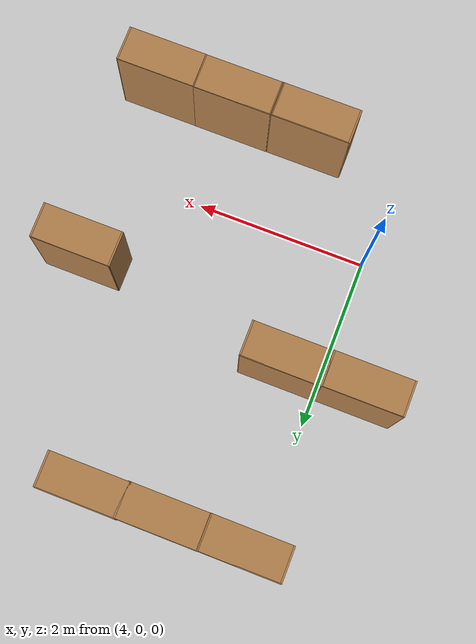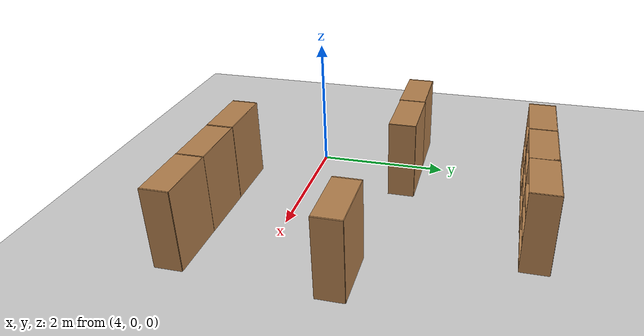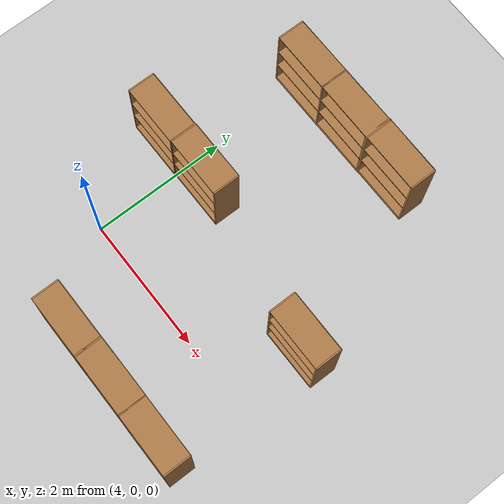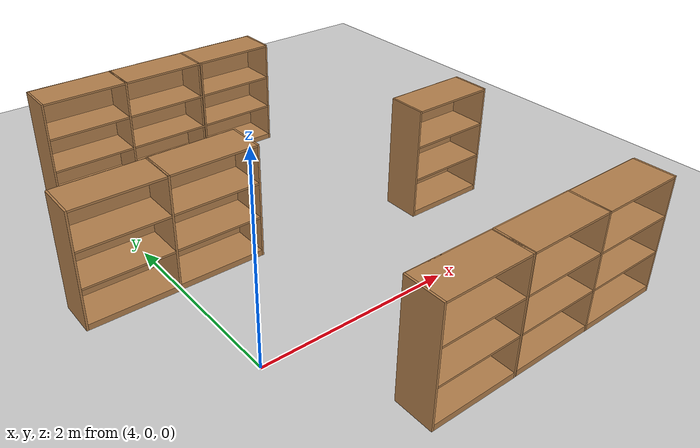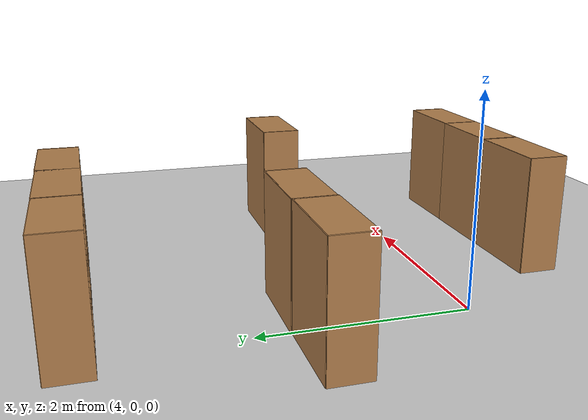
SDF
<sdf version="1.7">
 <world name="default">
  <model name="ground_plane">
   <static>1</static>
   <link name="link">
    <collision name="collision">
     <geometry><plane><normal>0 0 1</normal><size>100 100</size></plane></geometry>
     <surface><friction><ode><mu>100</mu><mu2>50</mu2></ode></friction></surface>
    </collision>
    <visual name="visual">
     <cast_shadows>0</cast_shadows>
     <geometry><plane><normal>0 0 1</normal><size>100 100</size></plane></geometry>
     <material>
      <script><uri>file://media/materials/scripts/gazebo.material</uri><name>Gazebo/Grey</name></script>
     </material>
    </visual>
   </link>
  </model>
  <model name="bookshelf_6">
   <static>1</static>
   <link name="link">
    <inertial><mass>1</mass></inertial>
    <collision name="back">
     <pose>0 0.005 0.6 0 -0 0</pose>
     <geometry><box><size>0.9 0.01 1.2</size></box></geometry>
    </collision>
    <visual name="visual1">
     <pose>0 0.005 0.6 0 -0 0</pose>
     <geometry><box><size>0.9 0.01 1.2</size></box></geometry>
     <material>
      <script><uri>file://media/materials/scripts/gazebo.material</uri><name>Gazebo/Wood</name></script>
     </material>
    </visual>
    <collision name="left_side">
     <pose>0.45 -0.195 0.6 0 -0 0</pose>
     <geometry><box><size>0.02 0.4 1.2</size></box></geometry>
    </collision>
    <visual name="visual2">
     <pose>0.45 -0.195 0.6 0 -0 0</pose>
     <geometry><box><size>0.02 0.4 1.2</size></box></geometry>
     <material>
      <script><uri>file://media/materials/scripts/gazebo.material</uri><name>Gazebo/Wood</name></script>
     </material>
    </visual>
    <collision name="right_side">
     <pose>-0.45 -0.195 0.6 0 -0 0</pose>
     <geometry><box><size>0.02 0.4 1.2</size></box></geometry>
    </collision>
    <visual name="visual3">
     <pose>-0.45 -0.195 0.6 0 -0 0</pose>
     <geometry><box><size>0.02 0.4 1.2</size></box></geometry>
     <material>
      <script><uri>file://media/materials/scripts/gazebo.material</uri><name>Gazebo/Wood</name></script>
     </material>
    </visual>
    <collision name="bottom">
     <pose>0 -0.195 0.03 0 -0 0</pose>
     <geometry><box><size>0.88 0.4 0.06</size></box></geometry>
    </collision>
    <visual name="visual4">
     <pose>0 -0.195 0.03 0 -0 0</pose>
     <geometry><box><size>0.88 0.4 0.06</size></box></geometry>
     <material>
      <script><uri>file://media/materials/scripts/gazebo.material</uri><name>Gazebo/Wood</name></script>
     </material>
    </visual>
    <collision name="top">
     <pose>0 -0.195 1.19 0 -0 0</pose>
     <geometry><box><size>0.88 0.4 0.02</size></box></geometry>
    </collision>
    <visual name="visual5">
     <pose>0 -0.195 1.19 0 -0 0</pose>
     <geometry><box><size>0.88 0.4 0.02</size></box></geometry>
     <material>
      <script><uri>file://media/materials/scripts/gazebo.material</uri><name>Gazebo/Wood</name></script>
     </material>
    </visual>
    <collision name="low_shelf">
     <pose>0 -0.195 0.43 0 -0 0</pose>
     <geometry><box><size>0.88 0.4 0.02</size></box></geometry>
    </collision>
    <visual name="visual6">
     <pose>0 -0.195 0.43 0 -0 0</pose>
     <geometry><box><size>0.88 0.4 0.02</size></box></geometry>
     <material>
      <script><uri>file://media/materials/scripts/gazebo.material</uri><name>Gazebo/Wood</name></script>
     </material>
    </visual>
    <collision name="high_shelf">
     <pose>0 -0.195 0.8 0 -0 0</pose>
     <geometry><box><size>0.88 0.4 0.02</size></box></geometry>
    </collision>
    <visual name="visual7">
     <pose>0 -0.195 0.8 0 -0 0</pose>
     <geometry><box><size>0.88 0.4 0.02</size></box></geometry>
     <material>
      <script><uri>file://media/materials/scripts/gazebo.material</uri><name>Gazebo/Wood</name></script>
     </material>
    </visual>
   </link>
   <pose>3.54005 1.66298 0 0 -0 0</pose>
  </model>
  <model name="bookshelf_7">
   <static>1</static>
   <link name="link">
    <inertial><mass>1</mass></inertial>
    <collision name="back">
     <pose>0 0.005 0.6 0 -0 0</pose>
     <geometry><box><size>0.9 0.01 1.2</size></box></geometry>
    </collision>
    <visual name="visual1">
     <pose>0 0.005 0.6 0 -0 0</pose>
     <geometry><box><size>0.9 0.01 1.2</size></box></geometry>
     <material>
      <script><uri>file://media/materials/scripts/gazebo.material</uri><name>Gazebo/Wood</name></script>
     </material>
    </visual>
    <collision name="left_side">
     <pose>0.45 -0.195 0.6 0 -0 0</pose>
     <geometry><box><size>0.02 0.4 1.2</size></box></geometry>
    </collision>
    <visual name="visual2">
     <pose>0.45 -0.195 0.6 0 -0 0</pose>
     <geometry><box><size>0.02 0.4 1.2</size></box></geometry>
     <material>
      <script><uri>file://media/materials/scripts/gazebo.material</uri><name>Gazebo/Wood</name></script>
     </material>
    </visual>
    <collision name="right_side">
     <pose>-0.45 -0.195 0.6 0 -0 0</pose>
     <geometry><box><size>0.02 0.4 1.2</size></box></geometry>
    </collision>
    <visual name="visual3">
     <pose>-0.45 -0.195 0.6 0 -0 0</pose>
     <geometry><box><size>0.02 0.4 1.2</size></box></geometry>
     <material>
      <script><uri>file://media/materials/scripts/gazebo.material</uri><name>Gazebo/Wood</name></script>
     </material>
    </visual>
    <collision name="bottom">
     <pose>0 -0.195 0.03 0 -0 0</pose>
     <geometry><box><size>0.88 0.4 0.06</size></box></geometry>
    </collision>
    <visual name="visual4">
     <pose>0 -0.195 0.03 0 -0 0</pose>
     <geometry><box><size>0.88 0.4 0.06</size></box></geometry>
     <material>
      <script><uri>file://media/materials/scripts/gazebo.material</uri><name>Gazebo/Wood</name></script>
     </material>
    </visual>
    <collision name="top">
     <pose>0 -0.195 1.19 0 -0 0</pose>
     <geometry><box><size>0.88 0.4 0.02</size></box></geometry>
    </collision>
    <visual name="visual5">
     <pose>0 -0.195 1.19 0 -0 0</pose>
     <geometry><box><size>0.88 0.4 0.02</size></box></geometry>
     <material>
      <script><uri>file://media/materials/scripts/gazebo.material</uri><name>Gazebo/Wood</name></script>
     </material>
    </visual>
    <collision name="low_shelf">
     <pose>0 -0.195 0.43 0 -0 0</pose>
     <geometry><box><size>0.88 0.4 0.02</size></box></geometry>
    </collision>
    <visual name="visual6">
     <pose>0 -0.195 0.43 0 -0 0</pose>
     <geometry><box><size>0.88 0.4 0.02</size></box></geometry>
     <material>
      <script><uri>file://media/materials/scripts/gazebo.material</uri><name>Gazebo/Wood</name></script>
     </material>
    </visual>
    <collision name="high_shelf">
     <pose>0 -0.195 0.8 0 -0 0</pose>
     <geometry><box><size>0.88 0.4 0.02</size></box></geometry>
    </collision>
    <visual name="visual7">
     <pose>0 -0.195 0.8 0 -0 0</pose>
     <geometry><box><size>0.88 0.4 0.02</size></box></geometry>
     <material>
      <script><uri>file://media/materials/scripts/gazebo.material</uri><name>Gazebo/Wood</name></script>
     </material>
    </visual>
   </link>
   <pose>4.4431 1.67143 0 0 -0 0</pose>
  </model>
  <model name="bookshelf_8">
   <static>1</static>
   <link name="link">
    <inertial><mass>1</mass></inertial>
    <collision name="back">
     <pose>0 0.005 0.6 0 -0 0</pose>
     <geometry><box><size>0.9 0.01 1.2</size></box></geometry>
    </collision>
    <visual name="visual1">
     <pose>0 0.005 0.6 0 -0 0</pose>
     <geometry><box><size>0.9 0.01 1.2</size></box></geometry>
     <material>
      <script><uri>file://media/materials/scripts/gazebo.material</uri><name>Gazebo/Wood</name></script>
     </material>
    </visual>
    <collision name="left_side">
     <pose>0.45 -0.195 0.6 0 -0 0</pose>
     <geometry><box><size>0.02 0.4 1.2</size></box></geometry>
    </collision>
    <visual name="visual2">
     <pose>0.45 -0.195 0.6 0 -0 0</pose>
     <geometry><box><size>0.02 0.4 1.2</size></box></geometry>
     <material>
      <script><uri>file://media/materials/scripts/gazebo.material</uri><name>Gazebo/Wood</name></script>
     </material>
    </visual>
    <collision name="right_side">
     <pose>-0.45 -0.195 0.6 0 -0 0</pose>
     <geometry><box><size>0.02 0.4 1.2</size></box></geometry>
    </collision>
    <visual name="visual3">
     <pose>-0.45 -0.195 0.6 0 -0 0</pose>
     <geometry><box><size>0.02 0.4 1.2</size></box></geometry>
     <material>
      <script><uri>file://media/materials/scripts/gazebo.material</uri><name>Gazebo/Wood</name></script>
     </material>
    </visual>
    <collision name="bottom">
     <pose>0 -0.195 0.03 0 -0 0</pose>
     <geometry><box><size>0.88 0.4 0.06</size></box></geometry>
    </collision>
    <visual name="visual4">
     <pose>0 -0.195 0.03 0 -0 0</pose>
     <geometry><box><size>0.88 0.4 0.06</size></box></geometry>
     <material>
      <script><uri>file://media/materials/scripts/gazebo.material</uri><name>Gazebo/Wood</name></script>
     </material>
    </visual>
    <collision name="top">
     <pose>0 -0.195 1.19 0 -0 0</pose>
     <geometry><box><size>0.88 0.4 0.02</size></box></geometry>
    </collision>
    <visual name="visual5">
     <pose>0 -0.195 1.19 0 -0 0</pose>
     <geometry><box><size>0.88 0.4 0.02</size></box></geometry>
     <material>
      <script><uri>file://media/materials/scripts/gazebo.material</uri><name>Gazebo/Wood</name></script>
     </material>
    </visual>
    <collision name="low_shelf">
     <pose>0 -0.195 0.43 0 -0 0</pose>
     <geometry><box><size>0.88 0.4 0.02</size></box></geometry>
    </collision>
    <visual name="visual6">
     <pose>0 -0.195 0.43 0 -0 0</pose>
     <geometry><box><size>0.88 0.4 0.02</size></box></geometry>
     <material>
      <script><uri>file://media/materials/scripts/gazebo.material</uri><name>Gazebo/Wood</name></script>
     </material>
    </visual>
    <collision name="high_shelf">
     <pose>0 -0.195 0.8 0 -0 0</pose>
     <geometry><box><size>0.88 0.4 0.02</size></box></geometry>
    </collision>
    <visual name="visual7">
     <pose>0 -0.195 0.8 0 -0 0</pose>
     <geometry><box><size>0.88 0.4 0.02</size></box></geometry>
     <material>
      <script><uri>file://media/materials/scripts/gazebo.material</uri><name>Gazebo/Wood</name></script>
     </material>
    </visual>
   </link>
   <pose>4.13384 3.67848 0 0 -0 0</pose>
  </model>
  <model name="bookshelf_9">
   <static>1</static>
   <link name="link">
    <inertial><mass>1</mass></inertial>
    <collision name="back">
     <pose>0 0.005 0.6 0 -0 0</pose>
     <geometry><box><size>0.9 0.01 1.2</size></box></geometry>
    </collision>
    <visual name="visual1">
     <pose>0 0.005 0.6 0 -0 0</pose>
     <geometry><box><size>0.9 0.01 1.2</size></box></geometry>
     <material>
      <script><uri>file://media/materials/scripts/gazebo.material</uri><name>Gazebo/Wood</name></script>
     </material>
    </visual>
    <collision name="left_side">
     <pose>0.45 -0.195 0.6 0 -0 0</pose>
     <geometry><box><size>0.02 0.4 1.2</size></box></geometry>
    </collision>
    <visual name="visual2">
     <pose>0.45 -0.195 0.6 0 -0 0</pose>
     <geometry><box><size>0.02 0.4 1.2</size></box></geometry>
     <material>
      <script><uri>file://media/materials/scripts/gazebo.material</uri><name>Gazebo/Wood</name></script>
     </material>
    </visual>
    <collision name="right_side">
     <pose>-0.45 -0.195 0.6 0 -0 0</pose>
     <geometry><box><size>0.02 0.4 1.2</size></box></geometry>
    </collision>
    <visual name="visual3">
     <pose>-0.45 -0.195 0.6 0 -0 0</pose>
     <geometry><box><size>0.02 0.4 1.2</size></box></geometry>
     <material>
      <script><uri>file://media/materials/scripts/gazebo.material</uri><name>Gazebo/Wood</name></script>
     </material>
    </visual>
    <collision name="bottom">
     <pose>0 -0.195 0.03 0 -0 0</pose>
     <geometry><box><size>0.88 0.4 0.06</size></box></geometry>
    </collision>
    <visual name="visual4">
     <pose>0 -0.195 0.03 0 -0 0</pose>
     <geometry><box><size>0.88 0.4 0.06</size></box></geometry>
     <material>
      <script><uri>file://media/materials/scripts/gazebo.material</uri><name>Gazebo/Wood</name></script>
     </material>
    </visual>
    <collision name="top">
     <pose>0 -0.195 1.19 0 -0 0</pose>
     <geometry><box><size>0.88 0.4 0.02</size></box></geometry>
    </collision>
    <visual name="visual5">
     <pose>0 -0.195 1.19 0 -0 0</pose>
     <geometry><box><size>0.88 0.4 0.02</size></box></geometry>
     <material>
      <script><uri>file://media/materials/scripts/gazebo.material</uri><name>Gazebo/Wood</name></script>
     </material>
    </visual>
    <collision name="low_shelf">
     <pose>0 -0.195 0.43 0 -0 0</pose>
     <geometry><box><size>0.88 0.4 0.02</size></box></geometry>
    </collision>
    <visual name="visual6">
     <pose>0 -0.195 0.43 0 -0 0</pose>
     <geometry><box><size>0.88 0.4 0.02</size></box></geometry>
     <material>
      <script><uri>file://media/materials/scripts/gazebo.material</uri><name>Gazebo/Wood</name></script>
     </material>
    </visual>
    <collision name="high_shelf">
     <pose>0 -0.195 0.8 0 -0 0</pose>
     <geometry><box><size>0.88 0.4 0.02</size></box></geometry>
    </collision>
    <visual name="visual7">
     <pose>0 -0.195 0.8 0 -0 0</pose>
     <geometry><box><size>0.88 0.4 0.02</size></box></geometry>
     <material>
      <script><uri>file://media/materials/scripts/gazebo.material</uri><name>Gazebo/Wood</name></script>
     </material>
    </visual>
   </link>
   <pose>5.03495 3.6809 0 0 -0 0</pose>
  </model>
  <model name="bookshelf_10">
   <static>1</static>
   <link name="link">
    <inertial><mass>1</mass></inertial>
    <collision name="back">
     <pose>0 0.005 0.6 0 -0 0</pose>
     <geometry><box><size>0.9 0.01 1.2</size></box></geometry>
    </collision>
    <visual name="visual1">
     <pose>0 0.005 0.6 0 -0 0</pose>
     <geometry><box><size>0.9 0.01 1.2</size></box></geometry>
     <material>
      <script><uri>file://media/materials/scripts/gazebo.material</uri><name>Gazebo/Wood</name></script>
     </material>
    </visual>
    <collision name="left_side">
     <pose>0.45 -0.195 0.6 0 -0 0</pose>
     <geometry><box><size>0.02 0.4 1.2</size></box></geometry>
    </collision>
    <visual name="visual2">
     <pose>0.45 -0.195 0.6 0 -0 0</pose>
     <geometry><box><size>0.02 0.4 1.2</size></box></geometry>
     <material>
      <script><uri>file://media/materials/scripts/gazebo.material</uri><name>Gazebo/Wood</name></script>
     </material>
    </visual>
    <collision name="right_side">
     <pose>-0.45 -0.195 0.6 0 -0 0</pose>
     <geometry><box><size>0.02 0.4 1.2</size></box></geometry>
    </collision>
    <visual name="visual3">
     <pose>-0.45 -0.195 0.6 0 -0 0</pose>
     <geometry><box><size>0.02 0.4 1.2</size></box></geometry>
     <material>
      <script><uri>file://media/materials/scripts/gazebo.material</uri><name>Gazebo/Wood</name></script>
     </material>
    </visual>
    <collision name="bottom">
     <pose>0 -0.195 0.03 0 -0 0</pose>
     <geometry><box><size>0.88 0.4 0.06</size></box></geometry>
    </collision>
    <visual name="visual4">
     <pose>0 -0.195 0.03 0 -0 0</pose>
     <geometry><box><size>0.88 0.4 0.06</size></box></geometry>
     <material>
      <script><uri>file://media/materials/scripts/gazebo.material</uri><name>Gazebo/Wood</name></script>
     </material>
    </visual>
    <collision name="top">
     <pose>0 -0.195 1.19 0 -0 0</pose>
     <geometry><box><size>0.88 0.4 0.02</size></box></geometry>
    </collision>
    <visual name="visual5">
     <pose>0 -0.195 1.19 0 -0 0</pose>
     <geometry><box><size>0.88 0.4 0.02</size></box></geometry>
     <material>
      <script><uri>file://media/materials/scripts/gazebo.material</uri><name>Gazebo/Wood</name></script>
     </material>
    </visual>
    <collision name="low_shelf">
     <pose>0 -0.195 0.43 0 -0 0</pose>
     <geometry><box><size>0.88 0.4 0.02</size></box></geometry>
    </collision>
    <visual name="visual6">
     <pose>0 -0.195 0.43 0 -0 0</pose>
     <geometry><box><size>0.88 0.4 0.02</size></box></geometry>
     <material>
      <script><uri>file://media/materials/scripts/gazebo.material</uri><name>Gazebo/Wood</name></script>
     </material>
    </visual>
    <collision name="high_shelf">
     <pose>0 -0.195 0.8 0 -0 0</pose>
     <geometry><box><size>0.88 0.4 0.02</size></box></geometry>
    </collision>
    <visual name="visual7">
     <pose>0 -0.195 0.8 0 -0 0</pose>
     <geometry><box><size>0.88 0.4 0.02</size></box></geometry>
     <material>
      <script><uri>file://media/materials/scripts/gazebo.material</uri><name>Gazebo/Wood</name></script>
     </material>
    </visual>
   </link>
   <pose>5.91028 3.68644 0 0 -0 0</pose>
  </model>
  <model name="bookshelf_11">
   <static>1</static>
   <link name="link">
    <inertial><mass>1</mass></inertial>
    <collision name="back">
     <pose>0 0.005 0.6 0 -0 0</pose>
     <geometry><box><size>0.9 0.01 1.2</size></box></geometry>
    </collision>
    <visual name="visual1">
     <pose>0 0.005 0.6 0 -0 0</pose>
     <geometry><box><size>0.9 0.01 1.2</size></box></geometry>
     <material>
      <script><uri>file://media/materials/scripts/gazebo.material</uri><name>Gazebo/Wood</name></script>
     </material>
    </visual>
    <collision name="left_side">
     <pose>0.45 -0.195 0.6 0 -0 0</pose>
     <geometry><box><size>0.02 0.4 1.2</size></box></geometry>
    </collision>
    <visual name="visual2">
     <pose>0.45 -0.195 0.6 0 -0 0</pose>
     <geometry><box><size>0.02 0.4 1.2</size></box></geometry>
     <material>
      <script><uri>file://media/materials/scripts/gazebo.material</uri><name>Gazebo/Wood</name></script>
     </material>
    </visual>
    <collision name="right_side">
     <pose>-0.45 -0.195 0.6 0 -0 0</pose>
     <geometry><box><size>0.02 0.4 1.2</size></box></geometry>
    </collision>
    <visual name="visual3">
     <pose>-0.45 -0.195 0.6 0 -0 0</pose>
     <geometry><box><size>0.02 0.4 1.2</size></box></geometry>
     <material>
      <script><uri>file://media/materials/scripts/gazebo.material</uri><name>Gazebo/Wood</name></script>
     </material>
    </visual>
    <collision name="bottom">
     <pose>0 -0.195 0.03 0 -0 0</pose>
     <geometry><box><size>0.88 0.4 0.06</size></box></geometry>
    </collision>
    <visual name="visual4">
     <pose>0 -0.195 0.03 0 -0 0</pose>
     <geometry><box><size>0.88 0.4 0.06</size></box></geometry>
     <material>
      <script><uri>file://media/materials/scripts/gazebo.material</uri><name>Gazebo/Wood</name></script>
     </material>
    </visual>
    <collision name="top">
     <pose>0 -0.195 1.19 0 -0 0</pose>
     <geometry><box><size>0.88 0.4 0.02</size></box></geometry>
    </collision>
    <visual name="visual5">
     <pose>0 -0.195 1.19 0 -0 0</pose>
     <geometry><box><size>0.88 0.4 0.02</size></box></geometry>
     <material>
      <script><uri>file://media/materials/scripts/gazebo.material</uri><name>Gazebo/Wood</name></script>
     </material>
    </visual>
    <collision name="low_shelf">
     <pose>0 -0.195 0.43 0 -0 0</pose>
     <geometry><box><size>0.88 0.4 0.02</size></box></geometry>
    </collision>
    <visual name="visual6">
     <pose>0 -0.195 0.43 0 -0 0</pose>
     <geometry><box><size>0.88 0.4 0.02</size></box></geometry>
     <material>
      <script><uri>file://media/materials/scripts/gazebo.material</uri><name>Gazebo/Wood</name></script>
     </material>
    </visual>
    <collision name="high_shelf">
     <pose>0 -0.195 0.8 0 -0 0</pose>
     <geometry><box><size>0.88 0.4 0.02</size></box></geometry>
    </collision>
    <visual name="visual7">
     <pose>0 -0.195 0.8 0 -0 0</pose>
     <geometry><box><size>0.88 0.4 0.02</size></box></geometry>
     <material>
      <script><uri>file://media/materials/scripts/gazebo.material</uri><name>Gazebo/Wood</name></script>
     </material>
    </visual>
   </link>
   <pose>5.06895 -0.921461 0 0 -0 0</pose>
  </model>
  <model name="bookshelf_12">
   <static>1</static>
   <link name="link">
    <inertial><mass>1</mass></inertial>
    <collision name="back">
     <pose>0 0.005 0.6 0 -0 0</pose>
     <geometry><box><size>0.9 0.01 1.2</size></box></geometry>
    </collision>
    <visual name="visual1">
     <pose>0 0.005 0.6 0 -0 0</pose>
     <geometry><box><size>0.9 0.01 1.2</size></box></geometry>
     <material>
      <script><uri>file://media/materials/scripts/gazebo.material</uri><name>Gazebo/Wood</name></script>
     </material>
    </visual>
    <collision name="left_side">
     <pose>0.45 -0.195 0.6 0 -0 0</pose>
     <geometry><box><size>0.02 0.4 1.2</size></box></geometry>
    </collision>
    <visual name="visual2">
     <pose>0.45 -0.195 0.6 0 -0 0</pose>
     <geometry><box><size>0.02 0.4 1.2</size></box></geometry>
     <material>
      <script><uri>file://media/materials/scripts/gazebo.material</uri><name>Gazebo/Wood</name></script>
     </material>
    </visual>
    <collision name="right_side">
     <pose>-0.45 -0.195 0.6 0 -0 0</pose>
     <geometry><box><size>0.02 0.4 1.2</size></box></geometry>
    </collision>
    <visual name="visual3">
     <pose>-0.45 -0.195 0.6 0 -0 0</pose>
     <geometry><box><size>0.02 0.4 1.2</size></box></geometry>
     <material>
      <script><uri>file://media/materials/scripts/gazebo.material</uri><name>Gazebo/Wood</name></script>
     </material>
    </visual>
    <collision name="bottom">
     <pose>0 -0.195 0.03 0 -0 0</pose>
     <geometry><box><size>0.88 0.4 0.06</size></box></geometry>
    </collision>
    <visual name="visual4">
     <pose>0 -0.195 0.03 0 -0 0</pose>
     <geometry><box><size>0.88 0.4 0.06</size></box></geometry>
     <material>
      <script><uri>file://media/materials/scripts/gazebo.material</uri><name>Gazebo/Wood</name></script>
     </material>
    </visual>
    <collision name="top">
     <pose>0 -0.195 1.19 0 -0 0</pose>
     <geometry><box><size>0.88 0.4 0.02</size></box></geometry>
    </collision>
    <visual name="visual5">
     <pose>0 -0.195 1.19 0 -0 0</pose>
     <geometry><box><size>0.88 0.4 0.02</size></box></geometry>
     <material>
      <script><uri>file://media/materials/scripts/gazebo.material</uri><name>Gazebo/Wood</name></script>
     </material>
    </visual>
    <collision name="low_shelf">
     <pose>0 -0.195 0.43 0 -0 0</pose>
     <geometry><box><size>0.88 0.4 0.02</size></box></geometry>
    </collision>
    <visual name="visual6">
     <pose>0 -0.195 0.43 0 -0 0</pose>
     <geometry><box><size>0.88 0.4 0.02</size></box></geometry>
     <material>
      <script><uri>file://media/materials/scripts/gazebo.material</uri><name>Gazebo/Wood</name></script>
     </material>
    </visual>
    <collision name="high_shelf">
     <pose>0 -0.195 0.8 0 -0 0</pose>
     <geometry><box><size>0.88 0.4 0.02</size></box></geometry>
    </collision>
    <visual name="visual7">
     <pose>0 -0.195 0.8 0 -0 0</pose>
     <geometry><box><size>0.88 0.4 0.02</size></box></geometry>
     <material>
      <script><uri>file://media/materials/scripts/gazebo.material</uri><name>Gazebo/Wood</name></script>
     </material>
    </visual>
   </link>
   <pose>5.97976 -0.920163 0 0 -0 0</pose>
  </model>
  <model name="bookshelf_13">
   <static>1</static>
   <link name="link">
    <inertial><mass>1</mass></inertial>
    <collision name="back">
     <pose>0 0.005 0.6 0 -0 0</pose>
     <geometry><box><size>0.9 0.01 1.2</size></box></geometry>
    </collision>
    <visual name="visual1">
     <pose>0 0.005 0.6 0 -0 0</pose>
     <geometry><box><size>0.9 0.01 1.2</size></box></geometry>
     <material>
      <script><uri>file://media/materials/scripts/gazebo.material</uri><name>Gazebo/Wood</name></script>
     </material>
    </visual>
    <collision name="left_side">
     <pose>0.45 -0.195 0.6 0 -0 0</pose>
     <geometry><box><size>0.02 0.4 1.2</size></box></geometry>
    </collision>
    <visual name="visual2">
     <pose>0.45 -0.195 0.6 0 -0 0</pose>
     <geometry><box><size>0.02 0.4 1.2</size></box></geometry>
     <material>
      <script><uri>file://media/materials/scripts/gazebo.material</uri><name>Gazebo/Wood</name></script>
     </material>
    </visual>
    <collision name="right_side">
     <pose>-0.45 -0.195 0.6 0 -0 0</pose>
     <geometry><box><size>0.02 0.4 1.2</size></box></geometry>
    </collision>
    <visual name="visual3">
     <pose>-0.45 -0.195 0.6 0 -0 0</pose>
     <geometry><box><size>0.02 0.4 1.2</size></box></geometry>
     <material>
      <script><uri>file://media/materials/scripts/gazebo.material</uri><name>Gazebo/Wood</name></script>
     </material>
    </visual>
    <collision name="bottom">
     <pose>0 -0.195 0.03 0 -0 0</pose>
     <geometry><box><size>0.88 0.4 0.06</size></box></geometry>
    </collision>
    <visual name="visual4">
     <pose>0 -0.195 0.03 0 -0 0</pose>
     <geometry><box><size>0.88 0.4 0.06</size></box></geometry>
     <material>
      <script><uri>file://media/materials/scripts/gazebo.material</uri><name>Gazebo/Wood</name></script>
     </material>
    </visual>
    <collision name="top">
     <pose>0 -0.195 1.19 0 -0 0</pose>
     <geometry><box><size>0.88 0.4 0.02</size></box></geometry>
    </collision>
    <visual name="visual5">
     <pose>0 -0.195 1.19 0 -0 0</pose>
     <geometry><box><size>0.88 0.4 0.02</size></box></geometry>
     <material>
      <script><uri>file://media/materials/scripts/gazebo.material</uri><name>Gazebo/Wood</name></script>
     </material>
    </visual>
    <collision name="low_shelf">
     <pose>0 -0.195 0.43 0 -0 0</pose>
     <geometry><box><size>0.88 0.4 0.02</size></box></geometry>
    </collision>
    <visual name="visual6">
     <pose>0 -0.195 0.43 0 -0 0</pose>
     <geometry><box><size>0.88 0.4 0.02</size></box></geometry>
     <material>
      <script><uri>file://media/materials/scripts/gazebo.material</uri><name>Gazebo/Wood</name></script>
     </material>
    </visual>
    <collision name="high_shelf">
     <pose>0 -0.195 0.8 0 -0 0</pose>
     <geometry><box><size>0.88 0.4 0.02</size></box></geometry>
    </collision>
    <visual name="visual7">
     <pose>0 -0.195 0.8 0 -0 0</pose>
     <geometry><box><size>0.88 0.4 0.02</size></box></geometry>
     <material>
      <script><uri>file://media/materials/scripts/gazebo.material</uri><name>Gazebo/Wood</name></script>
     </material>
    </visual>
   </link>
   <pose>6.9764 1.28026 0 0 -0 0</pose>
  </model>
  <model name="bookshelf_14">
   <static>1</static>
   <link name="link">
    <inertial><mass>1</mass></inertial>
    <collision name="back">
     <pose>0 0.005 0.6 0 -0 0</pose>
     <geometry><box><size>0.9 0.01 1.2</size></box></geometry>
    </collision>
    <visual name="visual1">
     <pose>0 0.005 0.6 0 -0 0</pose>
     <geometry><box><size>0.9 0.01 1.2</size></box></geometry>
     <material>
      <script><uri>file://media/materials/scripts/gazebo.material</uri><name>Gazebo/Wood</name></script>
     </material>
    </visual>
    <collision name="left_side">
     <pose>0.45 -0.195 0.6 0 -0 0</pose>
     <geometry><box><size>0.02 0.4 1.2</size></box></geometry>
    </collision>
    <visual name="visual2">
     <pose>0.45 -0.195 0.6 0 -0 0</pose>
     <geometry><box><size>0.02 0.4 1.2</size></box></geometry>
     <material>
      <script><uri>file://media/materials/scripts/gazebo.material</uri><name>Gazebo/Wood</name></script>
     </material>
    </visual>
    <collision name="right_side">
     <pose>-0.45 -0.195 0.6 0 -0 0</pose>
     <geometry><box><size>0.02 0.4 1.2</size></box></geometry>
    </collision>
    <visual name="visual3">
     <pose>-0.45 -0.195 0.6 0 -0 0</pose>
     <geometry><box><size>0.02 0.4 1.2</size></box></geometry>
     <material>
      <script><uri>file://media/materials/scripts/gazebo.material</uri><name>Gazebo/Wood</name></script>
     </material>
    </visual>
    <collision name="bottom">
     <pose>0 -0.195 0.03 0 -0 0</pose>
     <geometry><box><size>0.88 0.4 0.06</size></box></geometry>
    </collision>
    <visual name="visual4">
     <pose>0 -0.195 0.03 0 -0 0</pose>
     <geometry><box><size>0.88 0.4 0.06</size></box></geometry>
     <material>
      <script><uri>file://media/materials/scripts/gazebo.material</uri><name>Gazebo/Wood</name></script>
     </material>
    </visual>
    <collision name="top">
     <pose>0 -0.195 1.19 0 -0 0</pose>
     <geometry><box><size>0.88 0.4 0.02</size></box></geometry>
    </collision>
    <visual name="visual5">
     <pose>0 -0.195 1.19 0 -0 0</pose>
     <geometry><box><size>0.88 0.4 0.02</size></box></geometry>
     <material>
      <script><uri>file://media/materials/scripts/gazebo.material</uri><name>Gazebo/Wood</name></script>
     </material>
    </visual>
    <collision name="low_shelf">
     <pose>0 -0.195 0.43 0 -0 0</pose>
     <geometry><box><size>0.88 0.4 0.02</size></box></geometry>
    </collision>
    <visual name="visual6">
     <pose>0 -0.195 0.43 0 -0 0</pose>
     <geometry><box><size>0.88 0.4 0.02</size></box></geometry>
     <material>
      <script><uri>file://media/materials/scripts/gazebo.material</uri><name>Gazebo/Wood</name></script>
     </material>
    </visual>
    <collision name="high_shelf">
     <pose>0 -0.195 0.8 0 -0 0</pose>
     <geometry><box><size>0.88 0.4 0.02</size></box></geometry>
    </collision>
    <visual name="visual7">
     <pose>0 -0.195 0.8 0 -0 0</pose>
     <geometry><box><size>0.88 0.4 0.02</size></box></geometry>
     <material>
      <script><uri>file://media/materials/scripts/gazebo.material</uri><name>Gazebo/Wood</name></script>
     </material>
    </visual>
   </link>
   <pose>6.87628 -0.921925 0 0 -0 0</pose>
  </model>
 </world>
</sdf>
